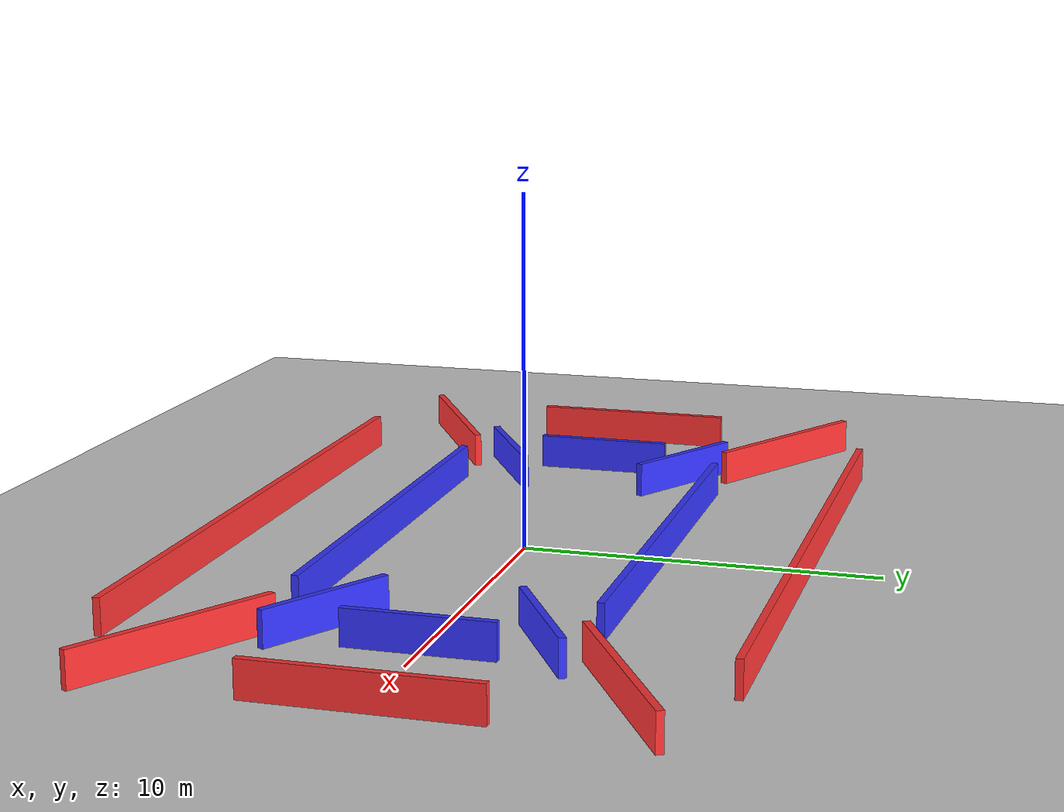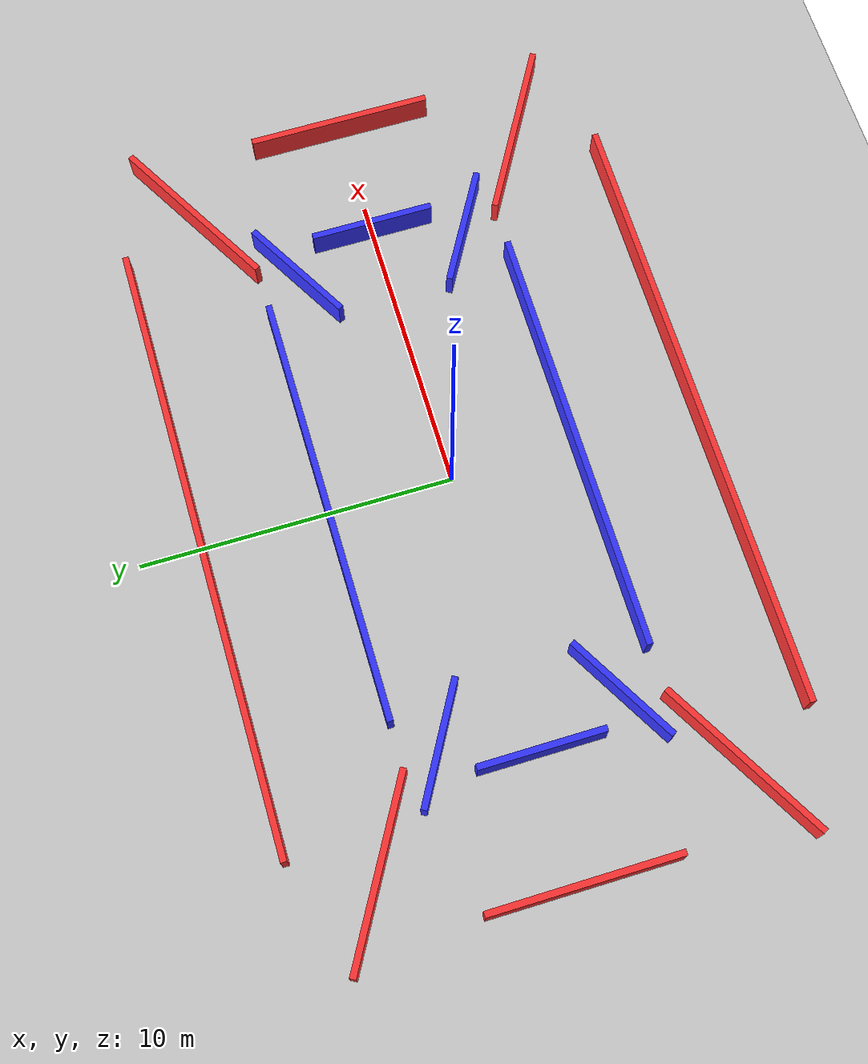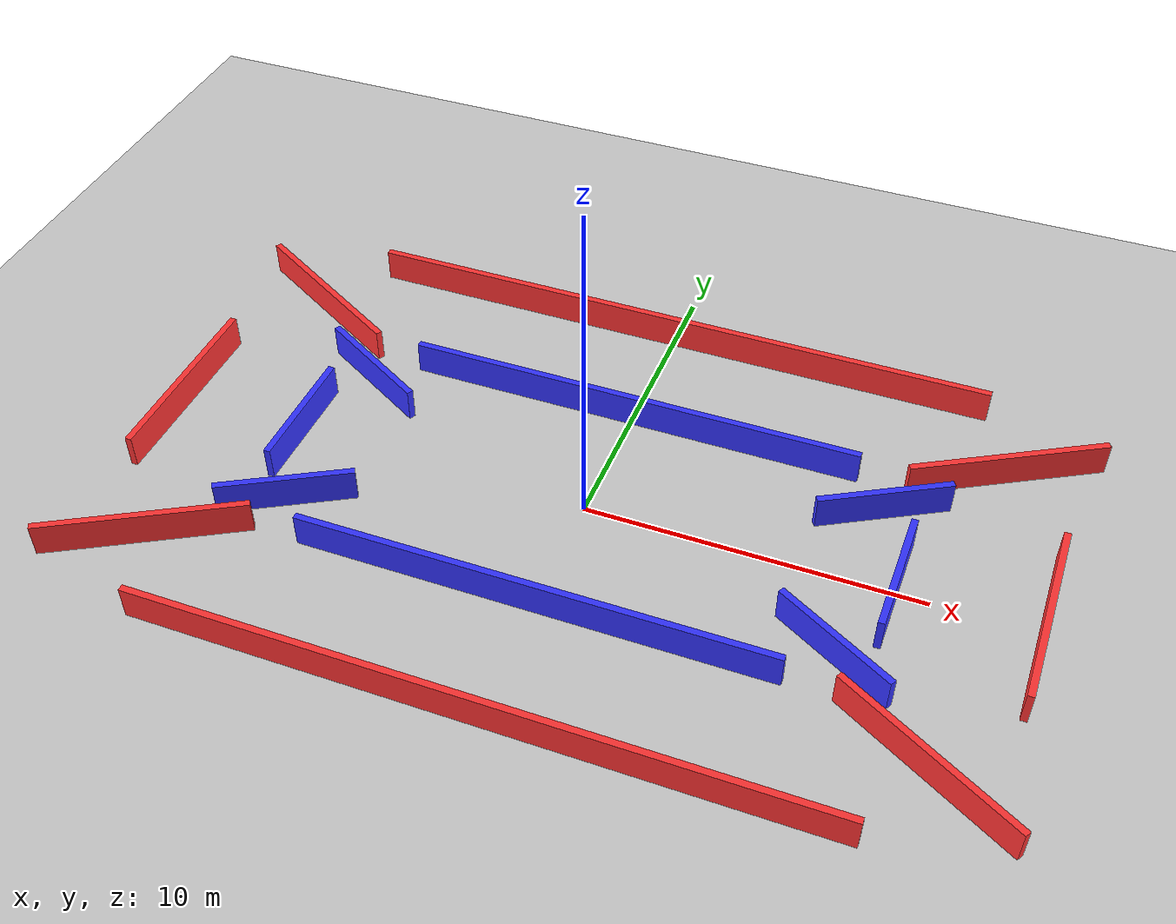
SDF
<?xml version="1.0" ?>
<sdf version="1.6">
  <world name="oval_track">

    <include><uri>model://sun</uri></include>
    <include><uri>model://ground_plane</uri></include>

    <physics type="ode">
      <real_time_update_rate>1000</real_time_update_rate>
      <max_step_size>0.001</max_step_size>
      <real_time_factor>1</real_time_factor>
    </physics>

    <!-- Outer wall: top straight -->
    <model name="ow_top">
      <static>true</static><pose>0 8 0.5 0 0 0</pose>
      <link name="link">
        <collision name="col"><geometry><box><size>20 0.2 1</size></box></geometry></collision>
        <visual name="vis"><geometry><box><size>20 0.2 1</size></box></geometry>
          <material><ambient>1 0.2 0.2 1</ambient></material></visual>
      </link>
    </model>

    <!-- Outer wall: bottom straight -->
    <model name="ow_bot">
      <static>true</static><pose>0 -8 0.5 0 0 0</pose>
      <link name="link">
        <collision name="col"><geometry><box><size>20 0.2 1</size></box></geometry></collision>
        <visual name="vis"><geometry><box><size>20 0.2 1</size></box></geometry>
          <material><ambient>1 0.2 0.2 1</ambient></material></visual>
      </link>
    </model>

    <!-- Outer end caps: right -->
    <model name="ow_r1">
      <static>true</static><pose>11 5.5 0.5 0 0 0.52</pose>
      <link name="link">
        <collision name="col"><geometry><box><size>6 0.2 1</size></box></geometry></collision>
        <visual name="vis"><geometry><box><size>6 0.2 1</size></box></geometry>
          <material><ambient>1 0.2 0.2 1</ambient></material></visual>
      </link>
    </model>
    <model name="ow_r2">
      <static>true</static><pose>13 0 0.5 0 0 1.5708</pose>
      <link name="link">
        <collision name="col"><geometry><box><size>6 0.2 1</size></box></geometry></collision>
        <visual name="vis"><geometry><box><size>6 0.2 1</size></box></geometry>
          <material><ambient>1 0.2 0.2 1</ambient></material></visual>
      </link>
    </model>
    <model name="ow_r3">
      <static>true</static><pose>11 -5.5 0.5 0 0 -0.52</pose>
      <link name="link">
        <collision name="col"><geometry><box><size>6 0.2 1</size></box></geometry></collision>
        <visual name="vis"><geometry><box><size>6 0.2 1</size></box></geometry>
          <material><ambient>1 0.2 0.2 1</ambient></material></visual>
      </link>
    </model>

    <!-- Outer end caps: left -->
    <model name="ow_l1">
      <static>true</static><pose>-11 5.5 0.5 0 0 -0.52</pose>
      <link name="link">
        <collision name="col"><geometry><box><size>6 0.2 1</size></box></geometry></collision>
        <visual name="vis"><geometry><box><size>6 0.2 1</size></box></geometry>
          <material><ambient>1 0.2 0.2 1</ambient></material></visual>
      </link>
    </model>
    <model name="ow_l2">
      <static>true</static><pose>-13 0 0.5 0 0 1.5708</pose>
      <link name="link">
        <collision name="col"><geometry><box><size>6 0.2 1</size></box></geometry></collision>
        <visual name="vis"><geometry><box><size>6 0.2 1</size></box></geometry>
          <material><ambient>1 0.2 0.2 1</ambient></material></visual>
      </link>
    </model>
    <model name="ow_l3">
      <static>true</static><pose>-11 -5.5 0.5 0 0 0.52</pose>
      <link name="link">
        <collision name="col"><geometry><box><size>6 0.2 1</size></box></geometry></collision>
        <visual name="vis"><geometry><box><size>6 0.2 1</size></box></geometry>
          <material><ambient>1 0.2 0.2 1</ambient></material></visual>
      </link>
    </model>

    <!-- Inner wall: top straight -->
    <model name="iw_top">
      <static>true</static><pose>0 4 0.5 0 0 0</pose>
      <link name="link">
        <collision name="col"><geometry><box><size>14 0.2 1</size></box></geometry></collision>
        <visual name="vis"><geometry><box><size>14 0.2 1</size></box></geometry>
          <material><ambient>0.2 0.2 1 1</ambient></material></visual>
      </link>
    </model>

    <!-- Inner wall: bottom straight -->
    <model name="iw_bot">
      <static>true</static><pose>0 -4 0.5 0 0 0</pose>
      <link name="link">
        <collision name="col"><geometry><box><size>14 0.2 1</size></box></geometry></collision>
        <visual name="vis"><geometry><box><size>14 0.2 1</size></box></geometry>
          <material><ambient>0.2 0.2 1 1</ambient></material></visual>
      </link>
    </model>

    <!-- Inner end caps: right -->
    <model name="iw_r1">
      <static>true</static><pose>8 2.8 0.5 0 0 0.52</pose>
      <link name="link">
        <collision name="col"><geometry><box><size>4 0.2 1</size></box></geometry></collision>
        <visual name="vis"><geometry><box><size>4 0.2 1</size></box></geometry>
          <material><ambient>0.2 0.2 1 1</ambient></material></visual>
      </link>
    </model>
    <model name="iw_r2">
      <static>true</static><pose>9 0 0.5 0 0 1.5708</pose>
      <link name="link">
        <collision name="col"><geometry><box><size>4 0.2 1</size></box></geometry></collision>
        <visual name="vis"><geometry><box><size>4 0.2 1</size></box></geometry>
          <material><ambient>0.2 0.2 1 1</ambient></material></visual>
      </link>
    </model>
    <model name="iw_r3">
      <static>true</static><pose>8 -2.8 0.5 0 0 -0.52</pose>
      <link name="link">
        <collision name="col"><geometry><box><size>4 0.2 1</size></box></geometry></collision>
        <visual name="vis"><geometry><box><size>4 0.2 1</size></box></geometry>
          <material><ambient>0.2 0.2 1 1</ambient></material></visual>
      </link>
    </model>

    <!-- Inner end caps: left -->
    <model name="iw_l1">
      <static>true</static><pose>-8 2.8 0.5 0 0 -0.52</pose>
      <link name="link">
        <collision name="col"><geometry><box><size>4 0.2 1</size></box></geometry></collision>
        <visual name="vis"><geometry><box><size>4 0.2 1</size></box></geometry>
          <material><ambient>0.2 0.2 1 1</ambient></material></visual>
      </link>
    </model>
    <model name="iw_l2">
      <static>true</static><pose>-9 0 0.5 0 0 1.5708</pose>
      <link name="link">
        <collision name="col"><geometry><box><size>4 0.2 1</size></box></geometry></collision>
        <visual name="vis"><geometry><box><size>4 0.2 1</size></box></geometry>
          <material><ambient>0.2 0.2 1 1</ambient></material></visual>
      </link>
    </model>
    <model name="iw_l3">
      <static>true</static><pose>-8 -2.8 0.5 0 0 0.52</pose>
      <link name="link">
        <collision name="col"><geometry><box><size>4 0.2 1</size></box></geometry></collision>
        <visual name="vis"><geometry><box><size>4 0.2 1</size></box></geometry>
          <material><ambient>0.2 0.2 1 1</ambient></material></visual>
      </link>
    </model>

  </world>
</sdf>
